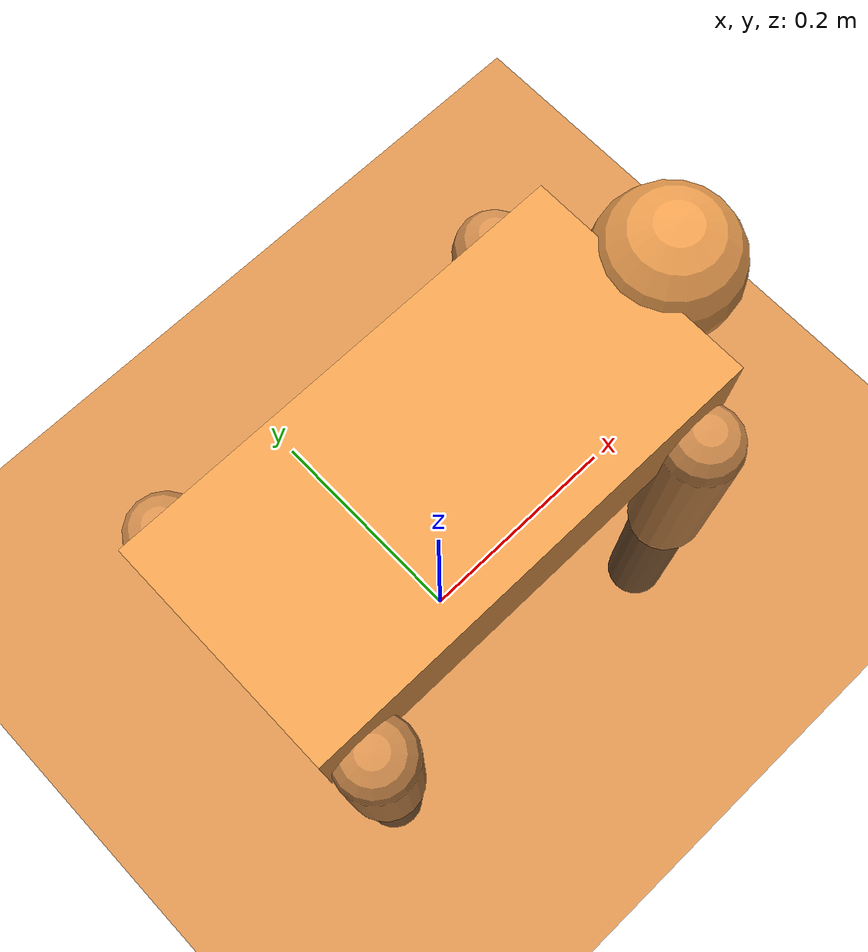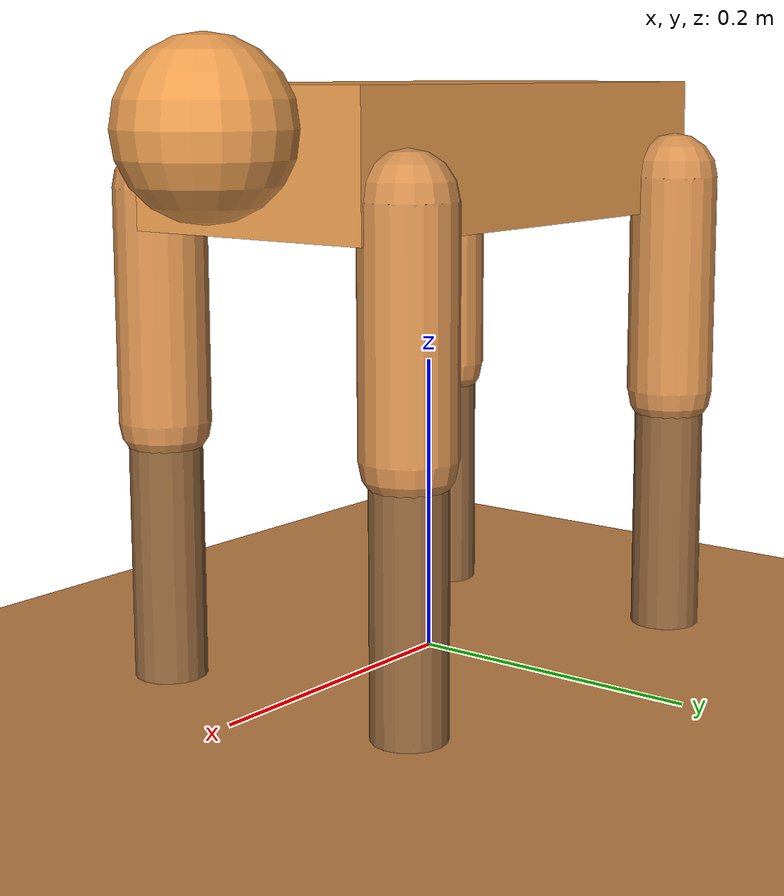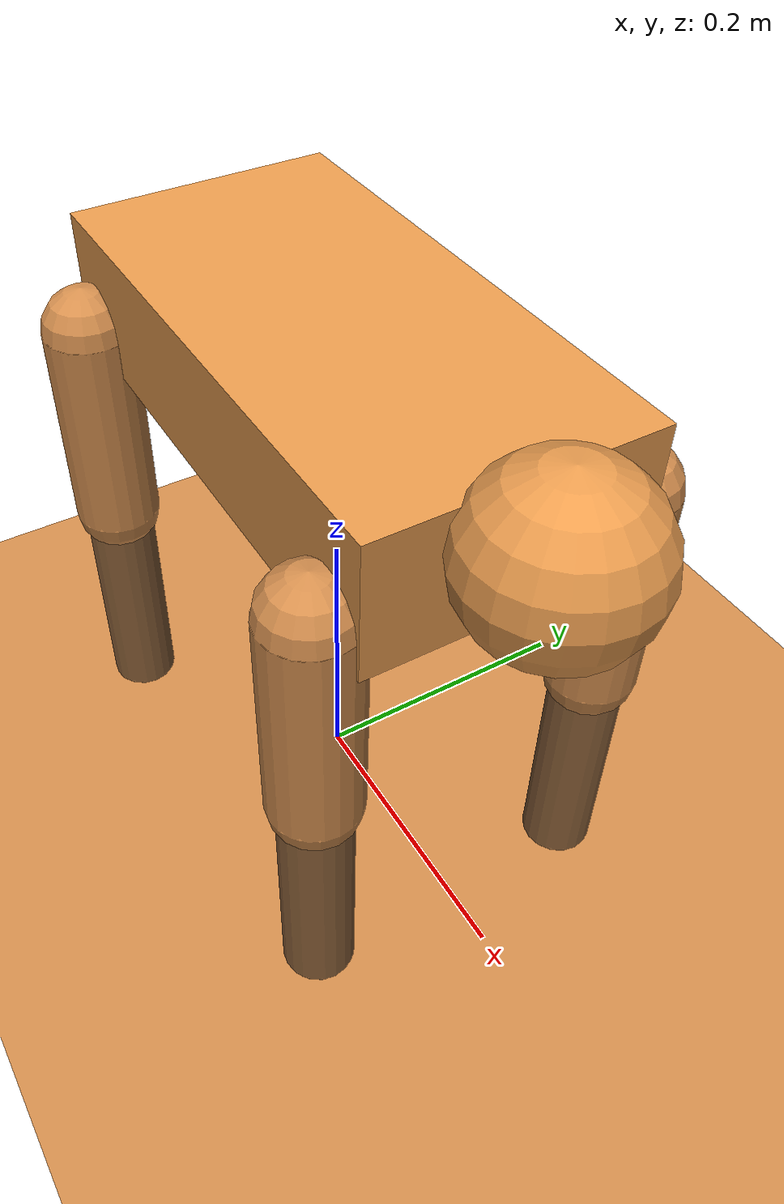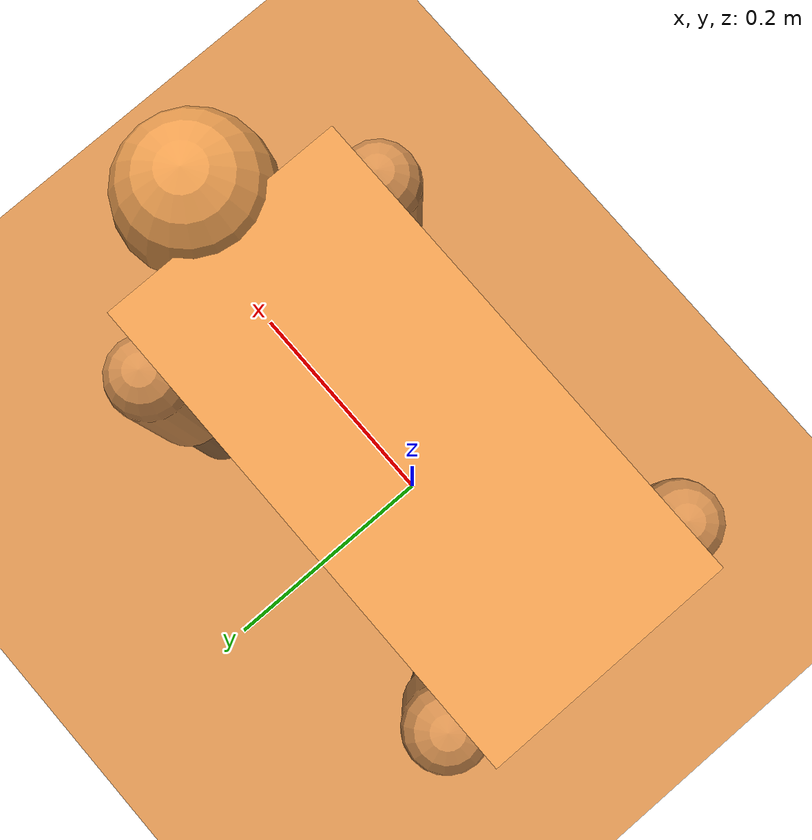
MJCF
<mujoco model="creature">

  <compiler angle="degree" autolimits="true"/>

  <option timestep="0.004" integrator="implicitfast" solver="Newton"
          iterations="4" ls_iterations="8" cone="pyramidal"/>

  <default>
    <geom condim="3" friction="0.8 0.02 0.01" density="1000" rgba="0.82 0.55 0.30 1"/>
    <joint type="hinge" damping="0.6" armature="0.02" limited="true"/>
    <motor ctrllimited="true" ctrlrange="-1 1"/>

    <default class="thigh">
      <geom type="capsule" size="0.030"/>
    </default>
    <default class="shin">
      <geom type="capsule" size="0.024" rgba="0.55 0.38 0.22 1"/>
    </default>
  </default>

  <asset>
    <texture name="skybox" type="skybox" builtin="gradient"
             rgb1="0.35 0.45 0.60" rgb2="0.08 0.10 0.14" width="256" height="256"/>
    <texture name="grid" type="2d" builtin="checker"
             rgb1="0.20 0.24 0.30" rgb2="0.14 0.17 0.21" width="512" height="512"/>
    <material name="grid" texture="grid" texrepeat="12 12" reflectance="0.05"/>
  </asset>

  <worldbody>
    <light name="sun" pos="0 0 5" dir="0 0 -1" directional="true" diffuse="0.8 0.8 0.8"/>
    <geom name="floor" type="plane" size="0 0 0.05" material="grid"
          condim="3" friction="0.8 0.02 0.01"/>

    <body name="torso" pos="0 0 0.34">
      <freejoint name="root"/>
      <!-- Nothing but the torso carries the free joint; qpos[0:7] is its pose. -->
      <geom name="torso" type="box" size="0.18 0.09 0.045" rgba="0.90 0.60 0.30 1"/>
      <geom name="head" type="sphere" size="0.055" pos="0.21 0 0.02" rgba="0.90 0.60 0.30 1"/>
      <site name="imu" pos="0 0 0" size="0.01"/>

      <!-- ===== front left ===== -->
      <body name="fl_thigh" pos="0.15 0.10 -0.02">
        <joint name="fl_hip" axis="0 1 0" range="-50 50"/>
        <geom class="thigh" fromto="0 0 0 0 0 -0.15"/>
        <body name="fl_shin" pos="0 0 -0.15">
          <joint name="fl_knee" axis="0 1 0" range="-90 20"/>
          <geom class="shin" fromto="0 0 0 0 0 -0.17"/>
        </body>
      </body>

      <!-- ===== front right ===== -->
      <body name="fr_thigh" pos="0.15 -0.10 -0.02">
        <joint name="fr_hip" axis="0 1 0" range="-50 50"/>
        <geom class="thigh" fromto="0 0 0 0 0 -0.15"/>
        <body name="fr_shin" pos="0 0 -0.15">
          <joint name="fr_knee" axis="0 1 0" range="-90 20"/>
          <geom class="shin" fromto="0 0 0 0 0 -0.17"/>
        </body>
      </body>

      <!-- ===== back left ===== -->
      <body name="bl_thigh" pos="-0.15 0.10 -0.02">
        <joint name="bl_hip" axis="0 1 0" range="-50 50"/>
        <geom class="thigh" fromto="0 0 0 0 0 -0.15"/>
        <body name="bl_shin" pos="0 0 -0.15">
          <joint name="bl_knee" axis="0 1 0" range="-90 20"/>
          <geom class="shin" fromto="0 0 0 0 0 -0.17"/>
        </body>
      </body>

      <!-- ===== back right ===== -->
      <body name="br_thigh" pos="-0.15 -0.10 -0.02">
        <joint name="br_hip" axis="0 1 0" range="-50 50"/>
        <geom class="thigh" fromto="0 0 0 0 0 -0.15"/>
        <body name="br_shin" pos="0 0 -0.15">
          <joint name="br_knee" axis="0 1 0" range="-90 20"/>
          <geom class="shin" fromto="0 0 0 0 0 -0.17"/>
        </body>
      </body>
    </body>
  </worldbody>

  <actuator>
    <!-- ORDER IS THE CONTRACT: Unity's CreatureAgent applies actions in this
         exact order. Do not reorder without re-exporting the policy. -->
    <motor name="fl_hip"  joint="fl_hip"  gear="18"/>
    <motor name="fl_knee" joint="fl_knee" gear="18"/>
    <motor name="fr_hip"  joint="fr_hip"  gear="18"/>
    <motor name="fr_knee" joint="fr_knee" gear="18"/>
    <motor name="bl_hip"  joint="bl_hip"  gear="18"/>
    <motor name="bl_knee" joint="bl_knee" gear="18"/>
    <motor name="br_hip"  joint="br_hip"  gear="18"/>
    <motor name="br_knee" joint="br_knee" gear="18"/>
  </actuator>

  <keyframe>
    <!-- home: slight crouch so the knees are off their singular straight pose -->
    <key name="home"
         qpos="0 0 0.34 1 0 0 0  0.25 -0.45  0.25 -0.45  0.25 -0.45  0.25 -0.45"
         ctrl="0 0 0 0 0 0 0 0"/>
  </keyframe>
</mujoco>
